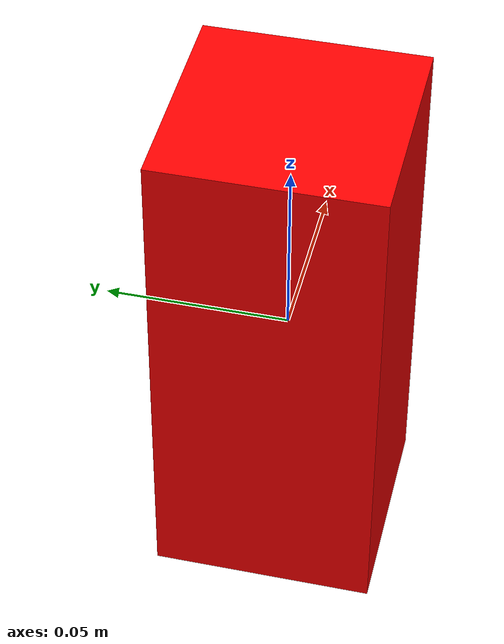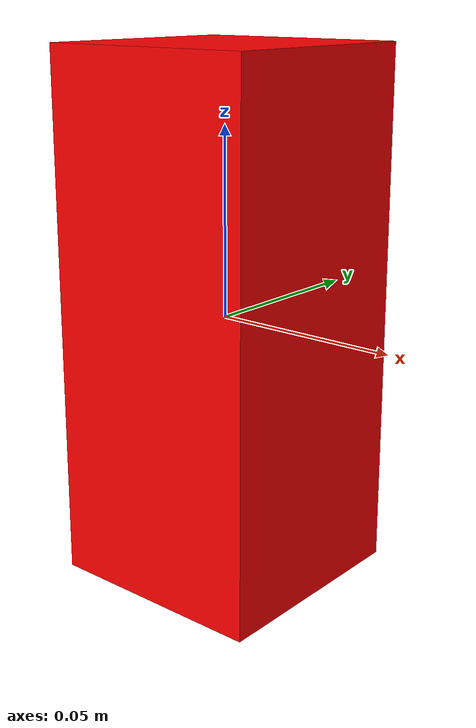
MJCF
<mujoco model="picked_box">
    <worldbody>
        <body name="picked_box" pos="0.0 0.0 0.0" quat="1 0 0 0">
            <geom name="picked_box" pos="0 0 0.0" size="0.03 0.03 0.07" rgba="1 0 0 1.0" type="box" mass="0.03" friction="0.3 0.3 0.0005" priority="1"/>
            <joint name="picked_box_joint" type="free"/>
        </body>
    </worldbody>
</mujoco>
